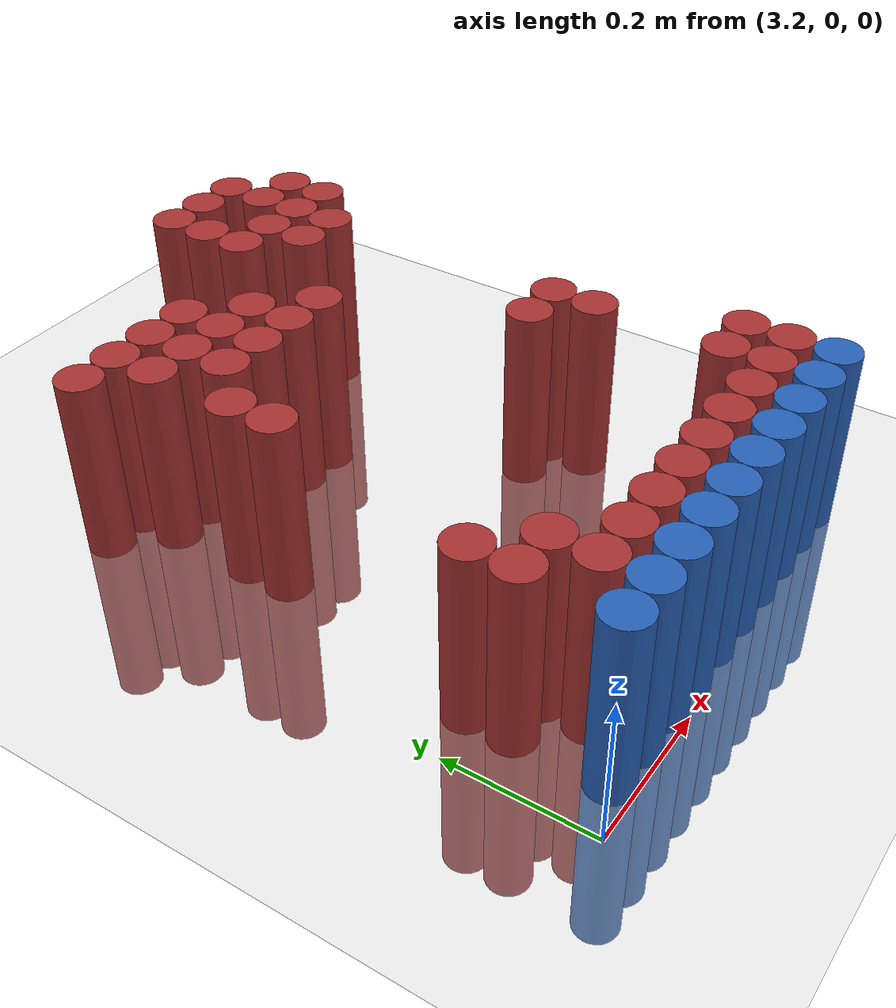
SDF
<sdf version="1.6">
 <world name="default">
  <model name="ground_plane">
   <static>1</static>
   <link name="link">
    <collision name="collision">
     <geometry><plane><normal>0 0 1</normal><size>100 100</size></plane></geometry>
     <surface><friction><ode><mu>100</mu><mu2>50</mu2></ode></friction></surface>
    </collision>
    <visual name="visual">
     <cast_shadows>0</cast_shadows>
     <geometry><plane><normal>0 0 1</normal><size>100 100</size></plane></geometry>
     <material>
      <script><uri>file://media/materials/scripts/gazebo.material</uri><name>Gazebo/Grey</name></script>
     </material>
    </visual>
   </link>
  </model>
  <model name="unit_cylinder_246">
   <static>1</static>
   <pose>3.630000 0.930000 0.000000 0.000000 0.000000 0.000000</pose>
   <link name="link">
    <inertial>
     <mass>1</mass>
     <inertia><ixx>0.145833</ixx><ixy>0</ixy><ixz>0</ixz><iyy>0.145833</iyy><iyz>0</iyz><izz>0.125</izz></inertia>
    </inertial>
    <collision name="collision">
     <geometry><cylinder><radius>0.030000</radius><length>0.5</length></cylinder></geometry>
    </collision>
    <visual name="visual">
     <geometry><cylinder><radius>0.030000</radius><length>0.5</length></cylinder></geometry>
     <material>
      <ambient>0.648000 0.192000 0.192000 1</ambient>
      <diffuse>0.648000 0.192000 0.192000 1</diffuse>
     </material>
     <material>
      <script><name>Gazebo/Grey</name><uri>file://media/materials/scripts/gazebo.material</uri></script>
     </material>
    </visual>
   </link>
  </model>
  <model name="unit_cylinder_247">
   <static>1</static>
   <pose>3.690000 0.930000 0.000000 0.000000 0.000000 0.000000</pose>
   <link name="link">
    <inertial>
     <mass>1</mass>
     <inertia><ixx>0.145833</ixx><ixy>0</ixy><ixz>0</ixz><iyy>0.145833</iyy><iyz>0</iyz><izz>0.125</izz></inertia>
    </inertial>
    <collision name="collision">
     <geometry><cylinder><radius>0.030000</radius><length>0.5</length></cylinder></geometry>
    </collision>
    <visual name="visual">
     <geometry><cylinder><radius>0.030000</radius><length>0.5</length></cylinder></geometry>
     <material>
      <ambient>0.648000 0.192000 0.192000 1</ambient>
      <diffuse>0.648000 0.192000 0.192000 1</diffuse>
     </material>
     <material>
      <script><name>Gazebo/Grey</name><uri>file://media/materials/scripts/gazebo.material</uri></script>
     </material>
    </visual>
   </link>
  </model>
  <model name="unit_cylinder_248">
   <static>1</static>
   <pose>3.750000 0.930000 0.000000 0.000000 0.000000 0.000000</pose>
   <link name="link">
    <inertial>
     <mass>1</mass>
     <inertia><ixx>0.145833</ixx><ixy>0</ixy><ixz>0</ixz><iyy>0.145833</iyy><iyz>0</iyz><izz>0.125</izz></inertia>
    </inertial>
    <collision name="collision">
     <geometry><cylinder><radius>0.030000</radius><length>0.5</length></cylinder></geometry>
    </collision>
    <visual name="visual">
     <geometry><cylinder><radius>0.030000</radius><length>0.5</length></cylinder></geometry>
     <material>
      <ambient>0.648000 0.192000 0.192000 1</ambient>
      <diffuse>0.648000 0.192000 0.192000 1</diffuse>
     </material>
     <material>
      <script><name>Gazebo/Grey</name><uri>file://media/materials/scripts/gazebo.material</uri></script>
     </material>
    </visual>
   </link>
  </model>
  <model name="unit_cylinder_252">
   <static>1</static>
   <pose>3.630000 0.870000 0.000000 0.000000 0.000000 0.000000</pose>
   <link name="link">
    <inertial>
     <mass>1</mass>
     <inertia><ixx>0.145833</ixx><ixy>0</ixy><ixz>0</ixz><iyy>0.145833</iyy><iyz>0</iyz><izz>0.125</izz></inertia>
    </inertial>
    <collision name="collision">
     <geometry><cylinder><radius>0.030000</radius><length>0.5</length></cylinder></geometry>
    </collision>
    <visual name="visual">
     <geometry><cylinder><radius>0.030000</radius><length>0.5</length></cylinder></geometry>
     <material>
      <ambient>0.648000 0.192000 0.192000 1</ambient>
      <diffuse>0.648000 0.192000 0.192000 1</diffuse>
     </material>
     <material>
      <script><name>Gazebo/Grey</name><uri>file://media/materials/scripts/gazebo.material</uri></script>
     </material>
    </visual>
   </link>
  </model>
  <model name="unit_cylinder_253">
   <static>1</static>
   <pose>3.750000 0.870000 0.000000 0.000000 0.000000 0.000000</pose>
   <link name="link">
    <inertial>
     <mass>1</mass>
     <inertia><ixx>0.145833</ixx><ixy>0</ixy><ixz>0</ixz><iyy>0.145833</iyy><iyz>0</iyz><izz>0.125</izz></inertia>
    </inertial>
    <collision name="collision">
     <geometry><cylinder><radius>0.030000</radius><length>0.5</length></cylinder></geometry>
    </collision>
    <visual name="visual">
     <geometry><cylinder><radius>0.030000</radius><length>0.5</length></cylinder></geometry>
     <material>
      <ambient>0.648000 0.192000 0.192000 1</ambient>
      <diffuse>0.648000 0.192000 0.192000 1</diffuse>
     </material>
     <material>
      <script><name>Gazebo/Grey</name><uri>file://media/materials/scripts/gazebo.material</uri></script>
     </material>
    </visual>
   </link>
  </model>
  <model name="unit_cylinder_254">
   <static>1</static>
   <pose>3.810000 0.870000 0.000000 0.000000 0.000000 0.000000</pose>
   <link name="link">
    <inertial>
     <mass>1</mass>
     <inertia><ixx>0.145833</ixx><ixy>0</ixy><ixz>0</ixz><iyy>0.145833</iyy><iyz>0</iyz><izz>0.125</izz></inertia>
    </inertial>
    <collision name="collision">
     <geometry><cylinder><radius>0.030000</radius><length>0.5</length></cylinder></geometry>
    </collision>
    <visual name="visual">
     <geometry><cylinder><radius>0.030000</radius><length>0.5</length></cylinder></geometry>
     <material>
      <ambient>0.648000 0.192000 0.192000 1</ambient>
      <diffuse>0.648000 0.192000 0.192000 1</diffuse>
     </material>
     <material>
      <script><name>Gazebo/Grey</name><uri>file://media/materials/scripts/gazebo.material</uri></script>
     </material>
    </visual>
   </link>
  </model>
  <model name="unit_cylinder_256">
   <static>1</static>
   <pose>3.630000 0.810000 0.000000 0.000000 0.000000 0.000000</pose>
   <link name="link">
    <inertial>
     <mass>1</mass>
     <inertia><ixx>0.145833</ixx><ixy>0</ixy><ixz>0</ixz><iyy>0.145833</iyy><iyz>0</iyz><izz>0.125</izz></inertia>
    </inertial>
    <collision name="collision">
     <geometry><cylinder><radius>0.030000</radius><length>0.5</length></cylinder></geometry>
    </collision>
    <visual name="visual">
     <geometry><cylinder><radius>0.030000</radius><length>0.5</length></cylinder></geometry>
     <material>
      <ambient>0.648000 0.192000 0.192000 1</ambient>
      <diffuse>0.648000 0.192000 0.192000 1</diffuse>
     </material>
     <material>
      <script><name>Gazebo/Grey</name><uri>file://media/materials/scripts/gazebo.material</uri></script>
     </material>
    </visual>
   </link>
  </model>
  <model name="unit_cylinder_257">
   <static>1</static>
   <pose>3.690000 0.810000 0.000000 0.000000 0.000000 0.000000</pose>
   <link name="link">
    <inertial>
     <mass>1</mass>
     <inertia><ixx>0.145833</ixx><ixy>0</ixy><ixz>0</ixz><iyy>0.145833</iyy><iyz>0</iyz><izz>0.125</izz></inertia>
    </inertial>
    <collision name="collision">
     <geometry><cylinder><radius>0.030000</radius><length>0.5</length></cylinder></geometry>
    </collision>
    <visual name="visual">
     <geometry><cylinder><radius>0.030000</radius><length>0.5</length></cylinder></geometry>
     <material>
      <ambient>0.648000 0.192000 0.192000 1</ambient>
      <diffuse>0.648000 0.192000 0.192000 1</diffuse>
     </material>
     <material>
      <script><name>Gazebo/Grey</name><uri>file://media/materials/scripts/gazebo.material</uri></script>
     </material>
    </visual>
   </link>
  </model>
  <model name="unit_cylinder_258">
   <static>1</static>
   <pose>3.750000 0.810000 0.000000 0.000000 0.000000 0.000000</pose>
   <link name="link">
    <inertial>
     <mass>1</mass>
     <inertia><ixx>0.145833</ixx><ixy>0</ixy><ixz>0</ixz><iyy>0.145833</iyy><iyz>0</iyz><izz>0.125</izz></inertia>
    </inertial>
    <collision name="collision">
     <geometry><cylinder><radius>0.030000</radius><length>0.5</length></cylinder></geometry>
    </collision>
    <visual name="visual">
     <geometry><cylinder><radius>0.030000</radius><length>0.5</length></cylinder></geometry>
     <material>
      <ambient>0.648000 0.192000 0.192000 1</ambient>
      <diffuse>0.648000 0.192000 0.192000 1</diffuse>
     </material>
     <material>
      <script><name>Gazebo/Grey</name><uri>file://media/materials/scripts/gazebo.material</uri></script>
     </material>
    </visual>
   </link>
  </model>
  <model name="unit_cylinder_259">
   <static>1</static>
   <pose>3.810000 0.810000 0.000000 0.000000 0.000000 0.000000</pose>
   <link name="link">
    <inertial>
     <mass>1</mass>
     <inertia><ixx>0.145833</ixx><ixy>0</ixy><ixz>0</ixz><iyy>0.145833</iyy><iyz>0</iyz><izz>0.125</izz></inertia>
    </inertial>
    <collision name="collision">
     <geometry><cylinder><radius>0.030000</radius><length>0.5</length></cylinder></geometry>
    </collision>
    <visual name="visual">
     <geometry><cylinder><radius>0.030000</radius><length>0.5</length></cylinder></geometry>
     <material>
      <ambient>0.648000 0.192000 0.192000 1</ambient>
      <diffuse>0.648000 0.192000 0.192000 1</diffuse>
     </material>
     <material>
      <script><name>Gazebo/Grey</name><uri>file://media/materials/scripts/gazebo.material</uri></script>
     </material>
    </visual>
   </link>
  </model>
  <model name="unit_cylinder_260">
   <static>1</static>
   <pose>3.270000 0.750000 0.000000 0.000000 0.000000 0.000000</pose>
   <link name="link">
    <inertial>
     <mass>1</mass>
     <inertia><ixx>0.145833</ixx><ixy>0</ixy><ixz>0</ixz><iyy>0.145833</iyy><iyz>0</iyz><izz>0.125</izz></inertia>
    </inertial>
    <collision name="collision">
     <geometry><cylinder><radius>0.030000</radius><length>0.5</length></cylinder></geometry>
    </collision>
    <visual name="visual">
     <geometry><cylinder><radius>0.030000</radius><length>0.5</length></cylinder></geometry>
     <material>
      <ambient>0.648000 0.192000 0.192000 1</ambient>
      <diffuse>0.648000 0.192000 0.192000 1</diffuse>
     </material>
     <material>
      <script><name>Gazebo/Grey</name><uri>file://media/materials/scripts/gazebo.material</uri></script>
     </material>
    </visual>
   </link>
  </model>
  <model name="unit_cylinder_261">
   <static>1</static>
   <pose>3.330000 0.750000 0.000000 0.000000 0.000000 0.000000</pose>
   <link name="link">
    <inertial>
     <mass>1</mass>
     <inertia><ixx>0.145833</ixx><ixy>0</ixy><ixz>0</ixz><iyy>0.145833</iyy><iyz>0</iyz><izz>0.125</izz></inertia>
    </inertial>
    <collision name="collision">
     <geometry><cylinder><radius>0.030000</radius><length>0.5</length></cylinder></geometry>
    </collision>
    <visual name="visual">
     <geometry><cylinder><radius>0.030000</radius><length>0.5</length></cylinder></geometry>
     <material>
      <ambient>0.648000 0.192000 0.192000 1</ambient>
      <diffuse>0.648000 0.192000 0.192000 1</diffuse>
     </material>
     <material>
      <script><name>Gazebo/Grey</name><uri>file://media/materials/scripts/gazebo.material</uri></script>
     </material>
    </visual>
   </link>
  </model>
  <model name="unit_cylinder_262">
   <static>1</static>
   <pose>3.390000 0.750000 0.000000 0.000000 0.000000 0.000000</pose>
   <link name="link">
    <inertial>
     <mass>1</mass>
     <inertia><ixx>0.145833</ixx><ixy>0</ixy><ixz>0</ixz><iyy>0.145833</iyy><iyz>0</iyz><izz>0.125</izz></inertia>
    </inertial>
    <collision name="collision">
     <geometry><cylinder><radius>0.030000</radius><length>0.5</length></cylinder></geometry>
    </collision>
    <visual name="visual">
     <geometry><cylinder><radius>0.030000</radius><length>0.5</length></cylinder></geometry>
     <material>
      <ambient>0.648000 0.192000 0.192000 1</ambient>
      <diffuse>0.648000 0.192000 0.192000 1</diffuse>
     </material>
     <material>
      <script><name>Gazebo/Grey</name><uri>file://media/materials/scripts/gazebo.material</uri></script>
     </material>
    </visual>
   </link>
  </model>
  <model name="unit_cylinder_263">
   <static>1</static>
   <pose>3.450000 0.750000 0.000000 0.000000 0.000000 0.000000</pose>
   <link name="link">
    <inertial>
     <mass>1</mass>
     <inertia><ixx>0.145833</ixx><ixy>0</ixy><ixz>0</ixz><iyy>0.145833</iyy><iyz>0</iyz><izz>0.125</izz></inertia>
    </inertial>
    <collision name="collision">
     <geometry><cylinder><radius>0.030000</radius><length>0.5</length></cylinder></geometry>
    </collision>
    <visual name="visual">
     <geometry><cylinder><radius>0.030000</radius><length>0.5</length></cylinder></geometry>
     <material>
      <ambient>0.648000 0.192000 0.192000 1</ambient>
      <diffuse>0.648000 0.192000 0.192000 1</diffuse>
     </material>
     <material>
      <script><name>Gazebo/Grey</name><uri>file://media/materials/scripts/gazebo.material</uri></script>
     </material>
    </visual>
   </link>
  </model>
  <model name="unit_cylinder_264">
   <static>1</static>
   <pose>3.690000 0.750000 0.000000 0.000000 0.000000 0.000000</pose>
   <link name="link">
    <inertial>
     <mass>1</mass>
     <inertia><ixx>0.145833</ixx><ixy>0</ixy><ixz>0</ixz><iyy>0.145833</iyy><iyz>0</iyz><izz>0.125</izz></inertia>
    </inertial>
    <collision name="collision">
     <geometry><cylinder><radius>0.030000</radius><length>0.5</length></cylinder></geometry>
    </collision>
    <visual name="visual">
     <geometry><cylinder><radius>0.030000</radius><length>0.5</length></cylinder></geometry>
     <material>
      <ambient>0.648000 0.192000 0.192000 1</ambient>
      <diffuse>0.648000 0.192000 0.192000 1</diffuse>
     </material>
     <material>
      <script><name>Gazebo/Grey</name><uri>file://media/materials/scripts/gazebo.material</uri></script>
     </material>
    </visual>
   </link>
  </model>
  <model name="unit_cylinder_265">
   <static>1</static>
   <pose>3.750000 0.750000 0.000000 0.000000 0.000000 0.000000</pose>
   <link name="link">
    <inertial>
     <mass>1</mass>
     <inertia><ixx>0.145833</ixx><ixy>0</ixy><ixz>0</ixz><iyy>0.145833</iyy><iyz>0</iyz><izz>0.125</izz></inertia>
    </inertial>
    <collision name="collision">
     <geometry><cylinder><radius>0.030000</radius><length>0.5</length></cylinder></geometry>
    </collision>
    <visual name="visual">
     <geometry><cylinder><radius>0.030000</radius><length>0.5</length></cylinder></geometry>
     <material>
      <ambient>0.648000 0.192000 0.192000 1</ambient>
      <diffuse>0.648000 0.192000 0.192000 1</diffuse>
     </material>
     <material>
      <script><name>Gazebo/Grey</name><uri>file://media/materials/scripts/gazebo.material</uri></script>
     </material>
    </visual>
   </link>
  </model>
  <model name="unit_cylinder_266">
   <static>1</static>
   <pose>3.330000 0.690000 0.000000 0.000000 0.000000 0.000000</pose>
   <link name="link">
    <inertial>
     <mass>1</mass>
     <inertia><ixx>0.145833</ixx><ixy>0</ixy><ixz>0</ixz><iyy>0.145833</iyy><iyz>0</iyz><izz>0.125</izz></inertia>
    </inertial>
    <collision name="collision">
     <geometry><cylinder><radius>0.030000</radius><length>0.5</length></cylinder></geometry>
    </collision>
    <visual name="visual">
     <geometry><cylinder><radius>0.030000</radius><length>0.5</length></cylinder></geometry>
     <material>
      <ambient>0.648000 0.192000 0.192000 1</ambient>
      <diffuse>0.648000 0.192000 0.192000 1</diffuse>
     </material>
     <material>
      <script><name>Gazebo/Grey</name><uri>file://media/materials/scripts/gazebo.material</uri></script>
     </material>
    </visual>
   </link>
  </model>
  <model name="unit_cylinder_267">
   <static>1</static>
   <pose>3.390000 0.690000 0.000000 0.000000 0.000000 0.000000</pose>
   <link name="link">
    <inertial>
     <mass>1</mass>
     <inertia><ixx>0.145833</ixx><ixy>0</ixy><ixz>0</ixz><iyy>0.145833</iyy><iyz>0</iyz><izz>0.125</izz></inertia>
    </inertial>
    <collision name="collision">
     <geometry><cylinder><radius>0.030000</radius><length>0.5</length></cylinder></geometry>
    </collision>
    <visual name="visual">
     <geometry><cylinder><radius>0.030000</radius><length>0.5</length></cylinder></geometry>
     <material>
      <ambient>0.648000 0.192000 0.192000 1</ambient>
      <diffuse>0.648000 0.192000 0.192000 1</diffuse>
     </material>
     <material>
      <script><name>Gazebo/Grey</name><uri>file://media/materials/scripts/gazebo.material</uri></script>
     </material>
    </visual>
   </link>
  </model>
  <model name="unit_cylinder_268">
   <static>1</static>
   <pose>3.450000 0.690000 0.000000 0.000000 0.000000 0.000000</pose>
   <link name="link">
    <inertial>
     <mass>1</mass>
     <inertia><ixx>0.145833</ixx><ixy>0</ixy><ixz>0</ixz><iyy>0.145833</iyy><iyz>0</iyz><izz>0.125</izz></inertia>
    </inertial>
    <collision name="collision">
     <geometry><cylinder><radius>0.030000</radius><length>0.5</length></cylinder></geometry>
    </collision>
    <visual name="visual">
     <geometry><cylinder><radius>0.030000</radius><length>0.5</length></cylinder></geometry>
     <material>
      <ambient>0.648000 0.192000 0.192000 1</ambient>
      <diffuse>0.648000 0.192000 0.192000 1</diffuse>
     </material>
     <material>
      <script><name>Gazebo/Grey</name><uri>file://media/materials/scripts/gazebo.material</uri></script>
     </material>
    </visual>
   </link>
  </model>
  <model name="unit_cylinder_269">
   <static>1</static>
   <pose>3.510000 0.690000 0.000000 0.000000 0.000000 0.000000</pose>
   <link name="link">
    <inertial>
     <mass>1</mass>
     <inertia><ixx>0.145833</ixx><ixy>0</ixy><ixz>0</ixz><iyy>0.145833</iyy><iyz>0</iyz><izz>0.125</izz></inertia>
    </inertial>
    <collision name="collision">
     <geometry><cylinder><radius>0.030000</radius><length>0.5</length></cylinder></geometry>
    </collision>
    <visual name="visual">
     <geometry><cylinder><radius>0.030000</radius><length>0.5</length></cylinder></geometry>
     <material>
      <ambient>0.648000 0.192000 0.192000 1</ambient>
      <diffuse>0.648000 0.192000 0.192000 1</diffuse>
     </material>
     <material>
      <script><name>Gazebo/Grey</name><uri>file://media/materials/scripts/gazebo.material</uri></script>
     </material>
    </visual>
   </link>
  </model>
  <model name="unit_cylinder_270">
   <static>1</static>
   <pose>3.390000 0.630000 0.000000 0.000000 0.000000 0.000000</pose>
   <link name="link">
    <inertial>
     <mass>1</mass>
     <inertia><ixx>0.145833</ixx><ixy>0</ixy><ixz>0</ixz><iyy>0.145833</iyy><iyz>0</iyz><izz>0.125</izz></inertia>
    </inertial>
    <collision name="collision">
     <geometry><cylinder><radius>0.030000</radius><length>0.5</length></cylinder></geometry>
    </collision>
    <visual name="visual">
     <geometry><cylinder><radius>0.030000</radius><length>0.5</length></cylinder></geometry>
     <material>
      <ambient>0.648000 0.192000 0.192000 1</ambient>
      <diffuse>0.648000 0.192000 0.192000 1</diffuse>
     </material>
     <material>
      <script><name>Gazebo/Grey</name><uri>file://media/materials/scripts/gazebo.material</uri></script>
     </material>
    </visual>
   </link>
  </model>
  <model name="unit_cylinder_271">
   <static>1</static>
   <pose>3.450000 0.630000 0.000000 0.000000 0.000000 0.000000</pose>
   <link name="link">
    <inertial>
     <mass>1</mass>
     <inertia><ixx>0.145833</ixx><ixy>0</ixy><ixz>0</ixz><iyy>0.145833</iyy><iyz>0</iyz><izz>0.125</izz></inertia>
    </inertial>
    <collision name="collision">
     <geometry><cylinder><radius>0.030000</radius><length>0.5</length></cylinder></geometry>
    </collision>
    <visual name="visual">
     <geometry><cylinder><radius>0.030000</radius><length>0.5</length></cylinder></geometry>
     <material>
      <ambient>0.648000 0.192000 0.192000 1</ambient>
      <diffuse>0.648000 0.192000 0.192000 1</diffuse>
     </material>
     <material>
      <script><name>Gazebo/Grey</name><uri>file://media/materials/scripts/gazebo.material</uri></script>
     </material>
    </visual>
   </link>
  </model>
  <model name="unit_cylinder_272">
   <static>1</static>
   <pose>3.510000 0.630000 0.000000 0.000000 0.000000 0.000000</pose>
   <link name="link">
    <inertial>
     <mass>1</mass>
     <inertia><ixx>0.145833</ixx><ixy>0</ixy><ixz>0</ixz><iyy>0.145833</iyy><iyz>0</iyz><izz>0.125</izz></inertia>
    </inertial>
    <collision name="collision">
     <geometry><cylinder><radius>0.030000</radius><length>0.5</length></cylinder></geometry>
    </collision>
    <visual name="visual">
     <geometry><cylinder><radius>0.030000</radius><length>0.5</length></cylinder></geometry>
     <material>
      <ambient>0.648000 0.192000 0.192000 1</ambient>
      <diffuse>0.648000 0.192000 0.192000 1</diffuse>
     </material>
     <material>
      <script><name>Gazebo/Grey</name><uri>file://media/materials/scripts/gazebo.material</uri></script>
     </material>
    </visual>
   </link>
  </model>
  <model name="unit_cylinder_273">
   <static>1</static>
   <pose>3.570000 0.630000 0.000000 0.000000 0.000000 0.000000</pose>
   <link name="link">
    <inertial>
     <mass>1</mass>
     <inertia><ixx>0.145833</ixx><ixy>0</ixy><ixz>0</ixz><iyy>0.145833</iyy><iyz>0</iyz><izz>0.125</izz></inertia>
    </inertial>
    <collision name="collision">
     <geometry><cylinder><radius>0.030000</radius><length>0.5</length></cylinder></geometry>
    </collision>
    <visual name="visual">
     <geometry><cylinder><radius>0.030000</radius><length>0.5</length></cylinder></geometry>
     <material>
      <ambient>0.648000 0.192000 0.192000 1</ambient>
      <diffuse>0.648000 0.192000 0.192000 1</diffuse>
     </material>
     <material>
      <script><name>Gazebo/Grey</name><uri>file://media/materials/scripts/gazebo.material</uri></script>
     </material>
    </visual>
   </link>
  </model>
  <model name="unit_cylinder_276">
   <static>1</static>
   <pose>3.330000 0.570000 0.000000 0.000000 0.000000 0.000000</pose>
   <link name="link">
    <inertial>
     <mass>1</mass>
     <inertia><ixx>0.145833</ixx><ixy>0</ixy><ixz>0</ixz><iyy>0.145833</iyy><iyz>0</iyz><izz>0.125</izz></inertia>
    </inertial>
    <collision name="collision">
     <geometry><cylinder><radius>0.030000</radius><length>0.5</length></cylinder></geometry>
    </collision>
    <visual name="visual">
     <geometry><cylinder><radius>0.030000</radius><length>0.5</length></cylinder></geometry>
     <material>
      <ambient>0.648000 0.192000 0.192000 1</ambient>
      <diffuse>0.648000 0.192000 0.192000 1</diffuse>
     </material>
     <material>
      <script><name>Gazebo/Grey</name><uri>file://media/materials/scripts/gazebo.material</uri></script>
     </material>
    </visual>
   </link>
  </model>
  <model name="unit_cylinder_279">
   <static>1</static>
   <pose>3.330000 0.510000 0.000000 0.000000 0.000000 0.000000</pose>
   <link name="link">
    <inertial>
     <mass>1</mass>
     <inertia><ixx>0.145833</ixx><ixy>0</ixy><ixz>0</ixz><iyy>0.145833</iyy><iyz>0</iyz><izz>0.125</izz></inertia>
    </inertial>
    <collision name="collision">
     <geometry><cylinder><radius>0.030000</radius><length>0.5</length></cylinder></geometry>
    </collision>
    <visual name="visual">
     <geometry><cylinder><radius>0.030000</radius><length>0.5</length></cylinder></geometry>
     <material>
      <ambient>0.648000 0.192000 0.192000 1</ambient>
      <diffuse>0.648000 0.192000 0.192000 1</diffuse>
     </material>
     <material>
      <script><name>Gazebo/Grey</name><uri>file://media/materials/scripts/gazebo.material</uri></script>
     </material>
    </visual>
   </link>
  </model>
  <model name="unit_cylinder_285">
   <static>1</static>
   <pose>3.690000 0.390000 0.000000 0.000000 0.000000 0.000000</pose>
   <link name="link">
    <inertial>
     <mass>1</mass>
     <inertia><ixx>0.145833</ixx><ixy>0</ixy><ixz>0</ixz><iyy>0.145833</iyy><iyz>0</iyz><izz>0.125</izz></inertia>
    </inertial>
    <collision name="collision">
     <geometry><cylinder><radius>0.030000</radius><length>0.5</length></cylinder></geometry>
    </collision>
    <visual name="visual">
     <geometry><cylinder><radius>0.030000</radius><length>0.5</length></cylinder></geometry>
     <material>
      <ambient>0.648000 0.192000 0.192000 1</ambient>
      <diffuse>0.648000 0.192000 0.192000 1</diffuse>
     </material>
     <material>
      <script><name>Gazebo/Grey</name><uri>file://media/materials/scripts/gazebo.material</uri></script>
     </material>
    </visual>
   </link>
  </model>
  <model name="unit_cylinder_286">
   <static>1</static>
   <pose>3.750000 0.390000 0.000000 0.000000 0.000000 0.000000</pose>
   <link name="link">
    <inertial>
     <mass>1</mass>
     <inertia><ixx>0.145833</ixx><ixy>0</ixy><ixz>0</ixz><iyy>0.145833</iyy><iyz>0</iyz><izz>0.125</izz></inertia>
    </inertial>
    <collision name="collision">
     <geometry><cylinder><radius>0.030000</radius><length>0.5</length></cylinder></geometry>
    </collision>
    <visual name="visual">
     <geometry><cylinder><radius>0.030000</radius><length>0.5</length></cylinder></geometry>
     <material>
      <ambient>0.648000 0.192000 0.192000 1</ambient>
      <diffuse>0.648000 0.192000 0.192000 1</diffuse>
     </material>
     <material>
      <script><name>Gazebo/Grey</name><uri>file://media/materials/scripts/gazebo.material</uri></script>
     </material>
    </visual>
   </link>
  </model>
  <model name="unit_cylinder_293">
   <static>1</static>
   <pose>3.750000 0.330000 0.000000 0.000000 0.000000 0.000000</pose>
   <link name="link">
    <inertial>
     <mass>1</mass>
     <inertia><ixx>0.145833</ixx><ixy>0</ixy><ixz>0</ixz><iyy>0.145833</iyy><iyz>0</iyz><izz>0.125</izz></inertia>
    </inertial>
    <collision name="collision">
     <geometry><cylinder><radius>0.030000</radius><length>0.5</length></cylinder></geometry>
    </collision>
    <visual name="visual">
     <geometry><cylinder><radius>0.030000</radius><length>0.5</length></cylinder></geometry>
     <material>
      <ambient>0.648000 0.192000 0.192000 1</ambient>
      <diffuse>0.648000 0.192000 0.192000 1</diffuse>
     </material>
     <material>
      <script><name>Gazebo/Grey</name><uri>file://media/materials/scripts/gazebo.material</uri></script>
     </material>
    </visual>
   </link>
  </model>
  <model name="unit_cylinder_305">
   <static>1</static>
   <pose>3.270000 0.210000 0.000000 0.000000 0.000000 0.000000</pose>
   <link name="link">
    <inertial>
     <mass>1</mass>
     <inertia><ixx>0.145833</ixx><ixy>0</ixy><ixz>0</ixz><iyy>0.145833</iyy><iyz>0</iyz><izz>0.125</izz></inertia>
    </inertial>
    <collision name="collision">
     <geometry><cylinder><radius>0.030000</radius><length>0.5</length></cylinder></geometry>
    </collision>
    <visual name="visual">
     <geometry><cylinder><radius>0.030000</radius><length>0.5</length></cylinder></geometry>
     <material>
      <ambient>0.648000 0.192000 0.192000 1</ambient>
      <diffuse>0.648000 0.192000 0.192000 1</diffuse>
     </material>
     <material>
      <script><name>Gazebo/Grey</name><uri>file://media/materials/scripts/gazebo.material</uri></script>
     </material>
    </visual>
   </link>
  </model>
  <model name="unit_cylinder_313">
   <static>1</static>
   <pose>3.270000 0.150000 0.000000 0.000000 0.000000 0.000000</pose>
   <link name="link">
    <inertial>
     <mass>1</mass>
     <inertia><ixx>0.145833</ixx><ixy>0</ixy><ixz>0</ixz><iyy>0.145833</iyy><iyz>0</iyz><izz>0.125</izz></inertia>
    </inertial>
    <collision name="collision">
     <geometry><cylinder><radius>0.030000</radius><length>0.5</length></cylinder></geometry>
    </collision>
    <visual name="visual">
     <geometry><cylinder><radius>0.030000</radius><length>0.5</length></cylinder></geometry>
     <material>
      <ambient>0.648000 0.192000 0.192000 1</ambient>
      <diffuse>0.648000 0.192000 0.192000 1</diffuse>
     </material>
     <material>
      <script><name>Gazebo/Grey</name><uri>file://media/materials/scripts/gazebo.material</uri></script>
     </material>
    </visual>
   </link>
  </model>
  <model name="unit_cylinder_314">
   <static>1</static>
   <pose>3.330000 0.150000 0.000000 0.000000 0.000000 0.000000</pose>
   <link name="link">
    <inertial>
     <mass>1</mass>
     <inertia><ixx>0.145833</ixx><ixy>0</ixy><ixz>0</ixz><iyy>0.145833</iyy><iyz>0</iyz><izz>0.125</izz></inertia>
    </inertial>
    <collision name="collision">
     <geometry><cylinder><radius>0.030000</radius><length>0.5</length></cylinder></geometry>
    </collision>
    <visual name="visual">
     <geometry><cylinder><radius>0.030000</radius><length>0.5</length></cylinder></geometry>
     <material>
      <ambient>0.648000 0.192000 0.192000 1</ambient>
      <diffuse>0.648000 0.192000 0.192000 1</diffuse>
     </material>
     <material>
      <script><name>Gazebo/Grey</name><uri>file://media/materials/scripts/gazebo.material</uri></script>
     </material>
    </visual>
   </link>
  </model>
  <model name="unit_cylinder_315">
   <static>1</static>
   <pose>3.750000 0.150000 0.000000 0.000000 0.000000 0.000000</pose>
   <link name="link">
    <inertial>
     <mass>1</mass>
     <inertia><ixx>0.145833</ixx><ixy>0</ixy><ixz>0</ixz><iyy>0.145833</iyy><iyz>0</iyz><izz>0.125</izz></inertia>
    </inertial>
    <collision name="collision">
     <geometry><cylinder><radius>0.030000</radius><length>0.5</length></cylinder></geometry>
    </collision>
    <visual name="visual">
     <geometry><cylinder><radius>0.030000</radius><length>0.5</length></cylinder></geometry>
     <material>
      <ambient>0.648000 0.192000 0.192000 1</ambient>
      <diffuse>0.648000 0.192000 0.192000 1</diffuse>
     </material>
     <material>
      <script><name>Gazebo/Grey</name><uri>file://media/materials/scripts/gazebo.material</uri></script>
     </material>
    </visual>
   </link>
  </model>
  <model name="unit_cylinder_316">
   <static>1</static>
   <pose>3.810000 0.150000 0.000000 0.000000 0.000000 0.000000</pose>
   <link name="link">
    <inertial>
     <mass>1</mass>
     <inertia><ixx>0.145833</ixx><ixy>0</ixy><ixz>0</ixz><iyy>0.145833</iyy><iyz>0</iyz><izz>0.125</izz></inertia>
    </inertial>
    <collision name="collision">
     <geometry><cylinder><radius>0.030000</radius><length>0.5</length></cylinder></geometry>
    </collision>
    <visual name="visual">
     <geometry><cylinder><radius>0.030000</radius><length>0.5</length></cylinder></geometry>
     <material>
      <ambient>0.648000 0.192000 0.192000 1</ambient>
      <diffuse>0.648000 0.192000 0.192000 1</diffuse>
     </material>
     <material>
      <script><name>Gazebo/Grey</name><uri>file://media/materials/scripts/gazebo.material</uri></script>
     </material>
    </visual>
   </link>
  </model>
  <model name="unit_cylinder_330">
   <static>1</static>
   <pose>3.330000 0.090000 0.000000 0.000000 0.000000 0.000000</pose>
   <link name="link">
    <inertial>
     <mass>1</mass>
     <inertia><ixx>0.145833</ixx><ixy>0</ixy><ixz>0</ixz><iyy>0.145833</iyy><iyz>0</iyz><izz>0.125</izz></inertia>
    </inertial>
    <collision name="collision">
     <geometry><cylinder><radius>0.030000</radius><length>0.5</length></cylinder></geometry>
    </collision>
    <visual name="visual">
     <geometry><cylinder><radius>0.030000</radius><length>0.5</length></cylinder></geometry>
     <material>
      <ambient>0.648000 0.192000 0.192000 1</ambient>
      <diffuse>0.648000 0.192000 0.192000 1</diffuse>
     </material>
     <material>
      <script><name>Gazebo/Grey</name><uri>file://media/materials/scripts/gazebo.material</uri></script>
     </material>
    </visual>
   </link>
  </model>
  <model name="unit_cylinder_331">
   <static>1</static>
   <pose>3.390000 0.090000 0.000000 0.000000 0.000000 0.000000</pose>
   <link name="link">
    <inertial>
     <mass>1</mass>
     <inertia><ixx>0.145833</ixx><ixy>0</ixy><ixz>0</ixz><iyy>0.145833</iyy><iyz>0</iyz><izz>0.125</izz></inertia>
    </inertial>
    <collision name="collision">
     <geometry><cylinder><radius>0.030000</radius><length>0.5</length></cylinder></geometry>
    </collision>
    <visual name="visual">
     <geometry><cylinder><radius>0.030000</radius><length>0.5</length></cylinder></geometry>
     <material>
      <ambient>0.648000 0.192000 0.192000 1</ambient>
      <diffuse>0.648000 0.192000 0.192000 1</diffuse>
     </material>
     <material>
      <script><name>Gazebo/Grey</name><uri>file://media/materials/scripts/gazebo.material</uri></script>
     </material>
    </visual>
   </link>
  </model>
  <model name="unit_cylinder_332">
   <static>1</static>
   <pose>3.450000 0.090000 0.000000 0.000000 0.000000 0.000000</pose>
   <link name="link">
    <inertial>
     <mass>1</mass>
     <inertia><ixx>0.145833</ixx><ixy>0</ixy><ixz>0</ixz><iyy>0.145833</iyy><iyz>0</iyz><izz>0.125</izz></inertia>
    </inertial>
    <collision name="collision">
     <geometry><cylinder><radius>0.030000</radius><length>0.5</length></cylinder></geometry>
    </collision>
    <visual name="visual">
     <geometry><cylinder><radius>0.030000</radius><length>0.5</length></cylinder></geometry>
     <material>
      <ambient>0.648000 0.192000 0.192000 1</ambient>
      <diffuse>0.648000 0.192000 0.192000 1</diffuse>
     </material>
     <material>
      <script><name>Gazebo/Grey</name><uri>file://media/materials/scripts/gazebo.material</uri></script>
     </material>
    </visual>
   </link>
  </model>
  <model name="unit_cylinder_333">
   <static>1</static>
   <pose>3.510000 0.090000 0.000000 0.000000 0.000000 0.000000</pose>
   <link name="link">
    <inertial>
     <mass>1</mass>
     <inertia><ixx>0.145833</ixx><ixy>0</ixy><ixz>0</ixz><iyy>0.145833</iyy><iyz>0</iyz><izz>0.125</izz></inertia>
    </inertial>
    <collision name="collision">
     <geometry><cylinder><radius>0.030000</radius><length>0.5</length></cylinder></geometry>
    </collision>
    <visual name="visual">
     <geometry><cylinder><radius>0.030000</radius><length>0.5</length></cylinder></geometry>
     <material>
      <ambient>0.648000 0.192000 0.192000 1</ambient>
      <diffuse>0.648000 0.192000 0.192000 1</diffuse>
     </material>
     <material>
      <script><name>Gazebo/Grey</name><uri>file://media/materials/scripts/gazebo.material</uri></script>
     </material>
    </visual>
   </link>
  </model>
  <model name="unit_cylinder_334">
   <static>1</static>
   <pose>3.570000 0.090000 0.000000 0.000000 0.000000 0.000000</pose>
   <link name="link">
    <inertial>
     <mass>1</mass>
     <inertia><ixx>0.145833</ixx><ixy>0</ixy><ixz>0</ixz><iyy>0.145833</iyy><iyz>0</iyz><izz>0.125</izz></inertia>
    </inertial>
    <collision name="collision">
     <geometry><cylinder><radius>0.030000</radius><length>0.5</length></cylinder></geometry>
    </collision>
    <visual name="visual">
     <geometry><cylinder><radius>0.030000</radius><length>0.5</length></cylinder></geometry>
     <material>
      <ambient>0.648000 0.192000 0.192000 1</ambient>
      <diffuse>0.648000 0.192000 0.192000 1</diffuse>
     </material>
     <material>
      <script><name>Gazebo/Grey</name><uri>file://media/materials/scripts/gazebo.material</uri></script>
     </material>
    </visual>
   </link>
  </model>
  <model name="unit_cylinder_335">
   <static>1</static>
   <pose>3.630000 0.090000 0.000000 0.000000 0.000000 0.000000</pose>
   <link name="link">
    <inertial>
     <mass>1</mass>
     <inertia><ixx>0.145833</ixx><ixy>0</ixy><ixz>0</ixz><iyy>0.145833</iyy><iyz>0</iyz><izz>0.125</izz></inertia>
    </inertial>
    <collision name="collision">
     <geometry><cylinder><radius>0.030000</radius><length>0.5</length></cylinder></geometry>
    </collision>
    <visual name="visual">
     <geometry><cylinder><radius>0.030000</radius><length>0.5</length></cylinder></geometry>
     <material>
      <ambient>0.648000 0.192000 0.192000 1</ambient>
      <diffuse>0.648000 0.192000 0.192000 1</diffuse>
     </material>
     <material>
      <script><name>Gazebo/Grey</name><uri>file://media/materials/scripts/gazebo.material</uri></script>
     </material>
    </visual>
   </link>
  </model>
  <model name="unit_cylinder_336">
   <static>1</static>
   <pose>3.690000 0.090000 0.000000 0.000000 0.000000 0.000000</pose>
   <link name="link">
    <inertial>
     <mass>1</mass>
     <inertia><ixx>0.145833</ixx><ixy>0</ixy><ixz>0</ixz><iyy>0.145833</iyy><iyz>0</iyz><izz>0.125</izz></inertia>
    </inertial>
    <collision name="collision">
     <geometry><cylinder><radius>0.030000</radius><length>0.5</length></cylinder></geometry>
    </collision>
    <visual name="visual">
     <geometry><cylinder><radius>0.030000</radius><length>0.5</length></cylinder></geometry>
     <material>
      <ambient>0.648000 0.192000 0.192000 1</ambient>
      <diffuse>0.648000 0.192000 0.192000 1</diffuse>
     </material>
     <material>
      <script><name>Gazebo/Grey</name><uri>file://media/materials/scripts/gazebo.material</uri></script>
     </material>
    </visual>
   </link>
  </model>
  <model name="unit_cylinder_337">
   <static>1</static>
   <pose>3.750000 0.090000 0.000000 0.000000 0.000000 0.000000</pose>
   <link name="link">
    <inertial>
     <mass>1</mass>
     <inertia><ixx>0.145833</ixx><ixy>0</ixy><ixz>0</ixz><iyy>0.145833</iyy><iyz>0</iyz><izz>0.125</izz></inertia>
    </inertial>
    <collision name="collision">
     <geometry><cylinder><radius>0.030000</radius><length>0.5</length></cylinder></geometry>
    </collision>
    <visual name="visual">
     <geometry><cylinder><radius>0.030000</radius><length>0.5</length></cylinder></geometry>
     <material>
      <ambient>0.648000 0.192000 0.192000 1</ambient>
      <diffuse>0.648000 0.192000 0.192000 1</diffuse>
     </material>
     <material>
      <script><name>Gazebo/Grey</name><uri>file://media/materials/scripts/gazebo.material</uri></script>
     </material>
    </visual>
   </link>
  </model>
  <model name="unit_cylinder_338">
   <static>1</static>
   <pose>3.810000 0.090000 0.000000 0.000000 0.000000 0.000000</pose>
   <link name="link">
    <inertial>
     <mass>1</mass>
     <inertia><ixx>0.145833</ixx><ixy>0</ixy><ixz>0</ixz><iyy>0.145833</iyy><iyz>0</iyz><izz>0.125</izz></inertia>
    </inertial>
    <collision name="collision">
     <geometry><cylinder><radius>0.030000</radius><length>0.5</length></cylinder></geometry>
    </collision>
    <visual name="visual">
     <geometry><cylinder><radius>0.030000</radius><length>0.5</length></cylinder></geometry>
     <material>
      <ambient>0.648000 0.192000 0.192000 1</ambient>
      <diffuse>0.648000 0.192000 0.192000 1</diffuse>
     </material>
     <material>
      <script><name>Gazebo/Grey</name><uri>file://media/materials/scripts/gazebo.material</uri></script>
     </material>
    </visual>
   </link>
  </model>
  <model name="unit_cylinder_359">
   <static>1</static>
   <pose>3.270000 0.030000 0.000000 0.000000 0.000000 0.000000</pose>
   <link name="link">
    <inertial>
     <mass>1</mass>
     <inertia><ixx>0.145833</ixx><ixy>0</ixy><ixz>0</ixz><iyy>0.145833</iyy><iyz>0</iyz><izz>0.125</izz></inertia>
    </inertial>
    <collision name="collision">
     <geometry><cylinder><radius>0.030000</radius><length>0.5</length></cylinder></geometry>
    </collision>
    <visual name="visual">
     <geometry><cylinder><radius>0.030000</radius><length>0.5</length></cylinder></geometry>
     <material>
      <ambient>0.152000 0.379000 0.720000 1</ambient>
      <diffuse>0.152000 0.379000 0.720000 1</diffuse>
     </material>
     <material>
      <script><name>Gazebo/Grey</name><uri>file://media/materials/scripts/gazebo.material</uri></script>
     </material>
    </visual>
   </link>
  </model>
  <model name="unit_cylinder_360">
   <static>1</static>
   <pose>3.330000 0.030000 0.000000 0.000000 0.000000 0.000000</pose>
   <link name="link">
    <inertial>
     <mass>1</mass>
     <inertia><ixx>0.145833</ixx><ixy>0</ixy><ixz>0</ixz><iyy>0.145833</iyy><iyz>0</iyz><izz>0.125</izz></inertia>
    </inertial>
    <collision name="collision">
     <geometry><cylinder><radius>0.030000</radius><length>0.5</length></cylinder></geometry>
    </collision>
    <visual name="visual">
     <geometry><cylinder><radius>0.030000</radius><length>0.5</length></cylinder></geometry>
     <material>
      <ambient>0.152000 0.379000 0.720000 1</ambient>
      <diffuse>0.152000 0.379000 0.720000 1</diffuse>
     </material>
     <material>
      <script><name>Gazebo/Grey</name><uri>file://media/materials/scripts/gazebo.material</uri></script>
     </material>
    </visual>
   </link>
  </model>
  <model name="unit_cylinder_361">
   <static>1</static>
   <pose>3.390000 0.030000 0.000000 0.000000 0.000000 0.000000</pose>
   <link name="link">
    <inertial>
     <mass>1</mass>
     <inertia><ixx>0.145833</ixx><ixy>0</ixy><ixz>0</ixz><iyy>0.145833</iyy><iyz>0</iyz><izz>0.125</izz></inertia>
    </inertial>
    <collision name="collision">
     <geometry><cylinder><radius>0.030000</radius><length>0.5</length></cylinder></geometry>
    </collision>
    <visual name="visual">
     <geometry><cylinder><radius>0.030000</radius><length>0.5</length></cylinder></geometry>
     <material>
      <ambient>0.152000 0.379000 0.720000 1</ambient>
      <diffuse>0.152000 0.379000 0.720000 1</diffuse>
     </material>
     <material>
      <script><name>Gazebo/Grey</name><uri>file://media/materials/scripts/gazebo.material</uri></script>
     </material>
    </visual>
   </link>
  </model>
  <model name="unit_cylinder_362">
   <static>1</static>
   <pose>3.450000 0.030000 0.000000 0.000000 0.000000 0.000000</pose>
   <link name="link">
    <inertial>
     <mass>1</mass>
     <inertia><ixx>0.145833</ixx><ixy>0</ixy><ixz>0</ixz><iyy>0.145833</iyy><iyz>0</iyz><izz>0.125</izz></inertia>
    </inertial>
    <collision name="collision">
     <geometry><cylinder><radius>0.030000</radius><length>0.5</length></cylinder></geometry>
    </collision>
    <visual name="visual">
     <geometry><cylinder><radius>0.030000</radius><length>0.5</length></cylinder></geometry>
     <material>
      <ambient>0.152000 0.379000 0.720000 1</ambient>
      <diffuse>0.152000 0.379000 0.720000 1</diffuse>
     </material>
     <material>
      <script><name>Gazebo/Grey</name><uri>file://media/materials/scripts/gazebo.material</uri></script>
     </material>
    </visual>
   </link>
  </model>
  <model name="unit_cylinder_363">
   <static>1</static>
   <pose>3.510000 0.030000 0.000000 0.000000 0.000000 0.000000</pose>
   <link name="link">
    <inertial>
     <mass>1</mass>
     <inertia><ixx>0.145833</ixx><ixy>0</ixy><ixz>0</ixz><iyy>0.145833</iyy><iyz>0</iyz><izz>0.125</izz></inertia>
    </inertial>
    <collision name="collision">
     <geometry><cylinder><radius>0.030000</radius><length>0.5</length></cylinder></geometry>
    </collision>
    <visual name="visual">
     <geometry><cylinder><radius>0.030000</radius><length>0.5</length></cylinder></geometry>
     <material>
      <ambient>0.152000 0.379000 0.720000 1</ambient>
      <diffuse>0.152000 0.379000 0.720000 1</diffuse>
     </material>
     <material>
      <script><name>Gazebo/Grey</name><uri>file://media/materials/scripts/gazebo.material</uri></script>
     </material>
    </visual>
   </link>
  </model>
  <model name="unit_cylinder_364">
   <static>1</static>
   <pose>3.570000 0.030000 0.000000 0.000000 0.000000 0.000000</pose>
   <link name="link">
    <inertial>
     <mass>1</mass>
     <inertia><ixx>0.145833</ixx><ixy>0</ixy><ixz>0</ixz><iyy>0.145833</iyy><iyz>0</iyz><izz>0.125</izz></inertia>
    </inertial>
    <collision name="collision">
     <geometry><cylinder><radius>0.030000</radius><length>0.5</length></cylinder></geometry>
    </collision>
    <visual name="visual">
     <geometry><cylinder><radius>0.030000</radius><length>0.5</length></cylinder></geometry>
     <material>
      <ambient>0.152000 0.379000 0.720000 1</ambient>
      <diffuse>0.152000 0.379000 0.720000 1</diffuse>
     </material>
     <material>
      <script><name>Gazebo/Grey</name><uri>file://media/materials/scripts/gazebo.material</uri></script>
     </material>
    </visual>
   </link>
  </model>
  <model name="unit_cylinder_365">
   <static>1</static>
   <pose>3.630000 0.030000 0.000000 0.000000 0.000000 0.000000</pose>
   <link name="link">
    <inertial>
     <mass>1</mass>
     <inertia><ixx>0.145833</ixx><ixy>0</ixy><ixz>0</ixz><iyy>0.145833</iyy><iyz>0</iyz><izz>0.125</izz></inertia>
    </inertial>
    <collision name="collision">
     <geometry><cylinder><radius>0.030000</radius><length>0.5</length></cylinder></geometry>
    </collision>
    <visual name="visual">
     <geometry><cylinder><radius>0.030000</radius><length>0.5</length></cylinder></geometry>
     <material>
      <ambient>0.152000 0.379000 0.720000 1</ambient>
      <diffuse>0.152000 0.379000 0.720000 1</diffuse>
     </material>
     <material>
      <script><name>Gazebo/Grey</name><uri>file://media/materials/scripts/gazebo.material</uri></script>
     </material>
    </visual>
   </link>
  </model>
  <model name="unit_cylinder_366">
   <static>1</static>
   <pose>3.690000 0.030000 0.000000 0.000000 0.000000 0.000000</pose>
   <link name="link">
    <inertial>
     <mass>1</mass>
     <inertia><ixx>0.145833</ixx><ixy>0</ixy><ixz>0</ixz><iyy>0.145833</iyy><iyz>0</iyz><izz>0.125</izz></inertia>
    </inertial>
    <collision name="collision">
     <geometry><cylinder><radius>0.030000</radius><length>0.5</length></cylinder></geometry>
    </collision>
    <visual name="visual">
     <geometry><cylinder><radius>0.030000</radius><length>0.5</length></cylinder></geometry>
     <material>
      <ambient>0.152000 0.379000 0.720000 1</ambient>
      <diffuse>0.152000 0.379000 0.720000 1</diffuse>
     </material>
     <material>
      <script><name>Gazebo/Grey</name><uri>file://media/materials/scripts/gazebo.material</uri></script>
     </material>
    </visual>
   </link>
  </model>
  <model name="unit_cylinder_367">
   <static>1</static>
   <pose>3.750000 0.030000 0.000000 0.000000 0.000000 0.000000</pose>
   <link name="link">
    <inertial>
     <mass>1</mass>
     <inertia><ixx>0.145833</ixx><ixy>0</ixy><ixz>0</ixz><iyy>0.145833</iyy><iyz>0</iyz><izz>0.125</izz></inertia>
    </inertial>
    <collision name="collision">
     <geometry><cylinder><radius>0.030000</radius><length>0.5</length></cylinder></geometry>
    </collision>
    <visual name="visual">
     <geometry><cylinder><radius>0.030000</radius><length>0.5</length></cylinder></geometry>
     <material>
      <ambient>0.152000 0.379000 0.720000 1</ambient>
      <diffuse>0.152000 0.379000 0.720000 1</diffuse>
     </material>
     <material>
      <script><name>Gazebo/Grey</name><uri>file://media/materials/scripts/gazebo.material</uri></script>
     </material>
    </visual>
   </link>
  </model>
  <model name="unit_cylinder_368">
   <static>1</static>
   <pose>3.810000 0.030000 0.000000 0.000000 0.000000 0.000000</pose>
   <link name="link">
    <inertial>
     <mass>1</mass>
     <inertia><ixx>0.145833</ixx><ixy>0</ixy><ixz>0</ixz><iyy>0.145833</iyy><iyz>0</iyz><izz>0.125</izz></inertia>
    </inertial>
    <collision name="collision">
     <geometry><cylinder><radius>0.030000</radius><length>0.5</length></cylinder></geometry>
    </collision>
    <visual name="visual">
     <geometry><cylinder><radius>0.030000</radius><length>0.5</length></cylinder></geometry>
     <material>
      <ambient>0.152000 0.379000 0.720000 1</ambient>
      <diffuse>0.152000 0.379000 0.720000 1</diffuse>
     </material>
     <material>
      <script><name>Gazebo/Grey</name><uri>file://media/materials/scripts/gazebo.material</uri></script>
     </material>
    </visual>
   </link>
  </model>
 </world>
</sdf>
